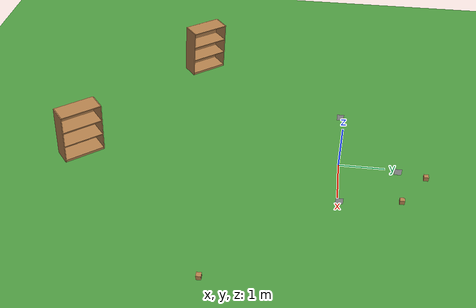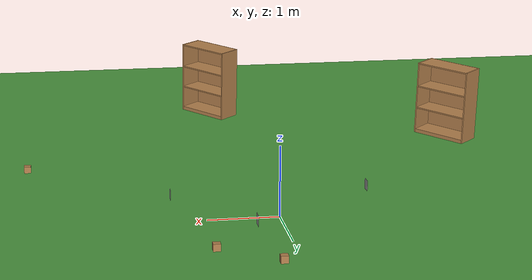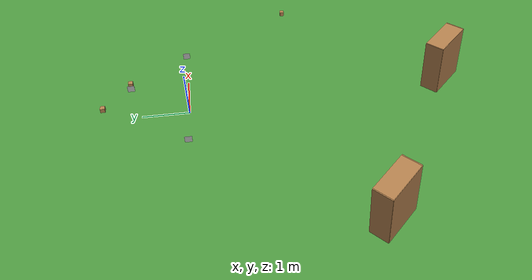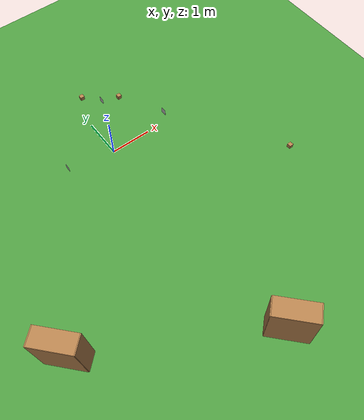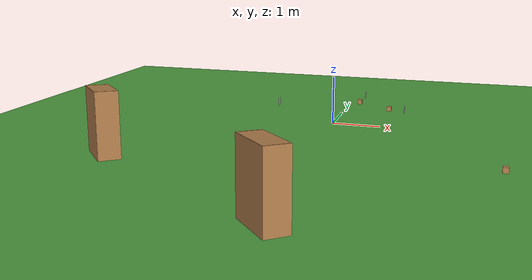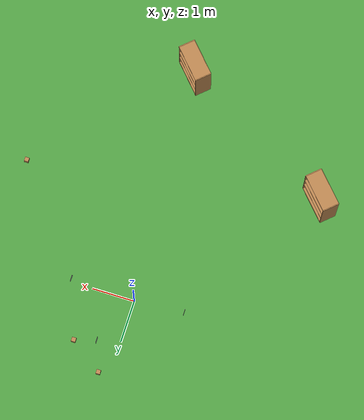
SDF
<sdf version="1.7">
 <world name="apriltag_world">
  <model name="grass_ground">
   <pose>-0.976022 -0.701641 0 0 -0 0</pose>
   <static>true</static>
   <link name="link">
    <collision name="collision">
     <geometry><plane><normal>0 0 1</normal><size>100 100</size></plane></geometry>
     <surface><friction><ode><mu>100</mu><mu2>50</mu2></ode></friction></surface>
    </collision>
    <visual name="visual">
     <cast_shadows>false</cast_shadows>
     <geometry><plane><normal>0 0 1</normal><size>100 100</size></plane></geometry>
     <material>
      <script><uri>file://media/materials/scripts/gazebo.material</uri><name>Gazebo/Grass</name></script>
     </material>
    </visual>
   </link>
  </model>
  <model name="apriltag_0">
   <static>1</static>
   <link name="link">
    <visual name="visual">
     <geometry><box><size>0.15 0.001 0.15</size></box></geometry>
     <material>
      <script>
       <uri>model://apriltag_0/materials/scripts</uri>
       <uri>model://apriltag_0/materials/textures</uri>
       <name>AprilTag/Tag0</name>
      </script>
     </material>
    </visual>
    <collision name="collision"><geometry><box><size>0.15 0.001 0.15</size></box></geometry></collision>
   </link>
   <pose>1.5 0 0.4 0 -0 1.5708</pose>
  </model>
  <model name="apriltag_1">
   <static>1</static>
   <link name="link">
    <visual name="visual">
     <geometry><box><size>0.15 0.001 0.15</size></box></geometry>
     <material>
      <script>
       <uri>model://apriltag_1/materials/scripts</uri>
       <uri>model://apriltag_1/materials/textures</uri>
       <name>AprilTag/Tag1</name>
      </script>
     </material>
    </visual>
    <collision name="collision"><geometry><box><size>0.15 0.001 0.15</size></box></geometry></collision>
   </link>
   <pose>0.5 1.2 0.4 0 -0 1.5708</pose>
  </model>
  <model name="apriltag_2">
   <static>1</static>
   <link name="link">
    <visual name="visual">
     <geometry><box><size>0.15 0.001 0.15</size></box></geometry>
     <material>
      <script>
       <uri>model://apriltag_2/materials/scripts</uri>
       <uri>model://apriltag_2/materials/textures</uri>
       <name>AprilTag/Tag2</name>
      </script>
     </material>
    </visual>
    <collision name="collision"><geometry><box><size>0.15 0.001 0.15</size></box></geometry></collision>
   </link>
   <pose>-1.2 0 0.4 0 -0 1.5708</pose>
  </model>
  <model name="bookshelf">
   <static>1</static>
   <link name="link">
    <inertial><mass>1</mass></inertial>
    <collision name="back">
     <pose>0 0.005 0.6 0 -0 0</pose>
     <geometry><box><size>0.9 0.01 1.2</size></box></geometry>
    </collision>
    <visual name="visual1">
     <pose>0 0.005 0.6 0 -0 0</pose>
     <geometry><box><size>0.9 0.01 1.2</size></box></geometry>
     <material>
      <script><uri>file://media/materials/scripts/gazebo.material</uri><name>Gazebo/Wood</name></script>
     </material>
    </visual>
    <collision name="left_side">
     <pose>0.45 -0.195 0.6 0 -0 0</pose>
     <geometry><box><size>0.02 0.4 1.2</size></box></geometry>
    </collision>
    <visual name="visual2">
     <pose>0.45 -0.195 0.6 0 -0 0</pose>
     <geometry><box><size>0.02 0.4 1.2</size></box></geometry>
     <material>
      <script><uri>file://media/materials/scripts/gazebo.material</uri><name>Gazebo/Wood</name></script>
     </material>
    </visual>
    <collision name="right_side">
     <pose>-0.45 -0.195 0.6 0 -0 0</pose>
     <geometry><box><size>0.02 0.4 1.2</size></box></geometry>
    </collision>
    <visual name="visual3">
     <pose>-0.45 -0.195 0.6 0 -0 0</pose>
     <geometry><box><size>0.02 0.4 1.2</size></box></geometry>
     <material>
      <script><uri>file://media/materials/scripts/gazebo.material</uri><name>Gazebo/Wood</name></script>
     </material>
    </visual>
    <collision name="bottom">
     <pose>0 -0.195 0.03 0 -0 0</pose>
     <geometry><box><size>0.88 0.4 0.06</size></box></geometry>
    </collision>
    <visual name="visual4">
     <pose>0 -0.195 0.03 0 -0 0</pose>
     <geometry><box><size>0.88 0.4 0.06</size></box></geometry>
     <material>
      <script><uri>file://media/materials/scripts/gazebo.material</uri><name>Gazebo/Wood</name></script>
     </material>
    </visual>
    <collision name="top">
     <pose>0 -0.195 1.19 0 -0 0</pose>
     <geometry><box><size>0.88 0.4 0.02</size></box></geometry>
    </collision>
    <visual name="visual5">
     <pose>0 -0.195 1.19 0 -0 0</pose>
     <geometry><box><size>0.88 0.4 0.02</size></box></geometry>
     <material>
      <script><uri>file://media/materials/scripts/gazebo.material</uri><name>Gazebo/Wood</name></script>
     </material>
    </visual>
    <collision name="low_shelf">
     <pose>0 -0.195 0.43 0 -0 0</pose>
     <geometry><box><size>0.88 0.4 0.02</size></box></geometry>
    </collision>
    <visual name="visual6">
     <pose>0 -0.195 0.43 0 -0 0</pose>
     <geometry><box><size>0.88 0.4 0.02</size></box></geometry>
     <material>
      <script><uri>file://media/materials/scripts/gazebo.material</uri><name>Gazebo/Wood</name></script>
     </material>
    </visual>
    <collision name="high_shelf">
     <pose>0 -0.195 0.8 0 -0 0</pose>
     <geometry><box><size>0.88 0.4 0.02</size></box></geometry>
    </collision>
    <visual name="visual7">
     <pose>0 -0.195 0.8 0 -0 0</pose>
     <geometry><box><size>0.88 0.4 0.02</size></box></geometry>
     <material>
      <script><uri>file://media/materials/scripts/gazebo.material</uri><name>Gazebo/Wood</name></script>
     </material>
    </visual>
   </link>
   <pose>-3.53817 -3.65933 0.062872 0.033085 0.055459 2.30524</pose>
  </model>
  <model name="bookshelf_clone">
   <static>1</static>
   <link name="link">
    <inertial><mass>1</mass></inertial>
    <collision name="back">
     <pose>0 0.005 0.6 0 -0 0</pose>
     <geometry><box><size>0.9 0.01 1.2</size></box></geometry>
    </collision>
    <visual name="visual1">
     <pose>0 0.005 0.6 0 -0 0</pose>
     <geometry><box><size>0.9 0.01 1.2</size></box></geometry>
     <material>
      <script><uri>file://media/materials/scripts/gazebo.material</uri><name>Gazebo/Wood</name></script>
     </material>
    </visual>
    <collision name="left_side">
     <pose>0.45 -0.195 0.6 0 -0 0</pose>
     <geometry><box><size>0.02 0.4 1.2</size></box></geometry>
    </collision>
    <visual name="visual2">
     <pose>0.45 -0.195 0.6 0 -0 0</pose>
     <geometry><box><size>0.02 0.4 1.2</size></box></geometry>
     <material>
      <script><uri>file://media/materials/scripts/gazebo.material</uri><name>Gazebo/Wood</name></script>
     </material>
    </visual>
    <collision name="right_side">
     <pose>-0.45 -0.195 0.6 0 -0 0</pose>
     <geometry><box><size>0.02 0.4 1.2</size></box></geometry>
    </collision>
    <visual name="visual3">
     <pose>-0.45 -0.195 0.6 0 -0 0</pose>
     <geometry><box><size>0.02 0.4 1.2</size></box></geometry>
     <material>
      <script><uri>file://media/materials/scripts/gazebo.material</uri><name>Gazebo/Wood</name></script>
     </material>
    </visual>
    <collision name="bottom">
     <pose>0 -0.195 0.03 0 -0 0</pose>
     <geometry><box><size>0.88 0.4 0.06</size></box></geometry>
    </collision>
    <visual name="visual4">
     <pose>0 -0.195 0.03 0 -0 0</pose>
     <geometry><box><size>0.88 0.4 0.06</size></box></geometry>
     <material>
      <script><uri>file://media/materials/scripts/gazebo.material</uri><name>Gazebo/Wood</name></script>
     </material>
    </visual>
    <collision name="top">
     <pose>0 -0.195 1.19 0 -0 0</pose>
     <geometry><box><size>0.88 0.4 0.02</size></box></geometry>
    </collision>
    <visual name="visual5">
     <pose>0 -0.195 1.19 0 -0 0</pose>
     <geometry><box><size>0.88 0.4 0.02</size></box></geometry>
     <material>
      <script><uri>file://media/materials/scripts/gazebo.material</uri><name>Gazebo/Wood</name></script>
     </material>
    </visual>
    <collision name="low_shelf">
     <pose>0 -0.195 0.43 0 -0 0</pose>
     <geometry><box><size>0.88 0.4 0.02</size></box></geometry>
    </collision>
    <visual name="visual6">
     <pose>0 -0.195 0.43 0 -0 0</pose>
     <geometry><box><size>0.88 0.4 0.02</size></box></geometry>
     <material>
      <script><uri>file://media/materials/scripts/gazebo.material</uri><name>Gazebo/Wood</name></script>
     </material>
    </visual>
    <collision name="high_shelf">
     <pose>0 -0.195 0.8 0 -0 0</pose>
     <geometry><box><size>0.88 0.4 0.02</size></box></geometry>
    </collision>
    <visual name="visual7">
     <pose>0 -0.195 0.8 0 -0 0</pose>
     <geometry><box><size>0.88 0.4 0.02</size></box></geometry>
     <material>
      <script><uri>file://media/materials/scripts/gazebo.material</uri><name>Gazebo/Wood</name></script>
     </material>
    </visual>
   </link>
   <pose>0.147034 -5.81504 0.062872 0.033085 0.055459 2.30524</pose>
  </model>
  <model name="wood_cube_10cm_clone_0">
   <link name="link">
    <pose>0 0 0.05 0 -0 0</pose>
    <inertial>
     <mass>0.5167</mass>
     <inertia>
      <ixx>0.000861167</ixx>
      <ixy>0</ixy>
      <ixz>0</ixz>
      <iyy>0.000861167</iyy>
      <iyz>0</iyz>
      <izz>0.000861167</izz>
     </inertia>
    </inertial>
    <collision name="collision">
     <geometry><box><size>0.1 0.1 0.1</size></box></geometry>
     <surface>
      <contact>
       <poissons_ratio>0.347</poissons_ratio>
       <elastic_modulus>8.8e+09</elastic_modulus>
       <ode><kp>100000</kp><kd>100</kd><max_vel>100</max_vel><min_depth>0.001</min_depth></ode>
      </contact>
      <friction>
       <torsional>
        <coefficient>1</coefficient>
        <use_patch_radius>0</use_patch_radius>
        <surface_radius>0.01</surface_radius>
       </torsional>
      </friction>
     </surface>
    </collision>
    <visual name="visual">
     <geometry><box><size>0.1 0.1 0.1</size></box></geometry>
     <material>
      <script><uri>file://media/materials/scripts/gazebo.material</uri><name>Gazebo/Wood</name></script>
     </material>
    </visual>
   </link>
   <pose>1.03444 1.29422 0.048987 0 -0 0</pose>
  </model>
  <model name="wood_cube_10cm_clone_1">
   <link name="link">
    <pose>0 0 0.05 0 -0 0</pose>
    <inertial>
     <mass>0.5167</mass>
     <inertia>
      <ixx>0.000861167</ixx>
      <ixy>0</ixy>
      <ixz>0</ixz>
      <iyy>0.000861167</iyy>
      <iyz>0</iyz>
      <izz>0.000861167</izz>
     </inertia>
    </inertial>
    <collision name="collision">
     <geometry><box><size>0.1 0.1 0.1</size></box></geometry>
     <surface>
      <contact>
       <poissons_ratio>0.347</poissons_ratio>
       <elastic_modulus>8.8e+09</elastic_modulus>
       <ode><kp>100000</kp><kd>100</kd><max_vel>100</max_vel><min_depth>0.001</min_depth></ode>
      </contact>
      <friction>
       <torsional>
        <coefficient>1</coefficient>
        <use_patch_radius>0</use_patch_radius>
        <surface_radius>0.01</surface_radius>
       </torsional>
      </friction>
     </surface>
    </collision>
    <visual name="visual">
     <geometry><box><size>0.1 0.1 0.1</size></box></geometry>
     <material>
      <script><uri>file://media/materials/scripts/gazebo.material</uri><name>Gazebo/Wood</name></script>
     </material>
    </visual>
   </link>
   <pose>0.266759 1.83946 0.048987 0 -0 0</pose>
  </model>
  <model name="wood_cube_10cm_clone_2">
   <link name="link">
    <pose>0 0 0.05 0 -0 0</pose>
    <inertial>
     <mass>0.5167</mass>
     <inertia>
      <ixx>0.000861167</ixx>
      <ixy>0</ixy>
      <ixz>0</ixz>
      <iyy>0.000861167</iyy>
      <iyz>0</iyz>
      <izz>0.000861167</izz>
     </inertia>
    </inertial>
    <collision name="collision">
     <geometry><box><size>0.1 0.1 0.1</size></box></geometry>
     <surface>
      <contact>
       <poissons_ratio>0.347</poissons_ratio>
       <elastic_modulus>8.8e+09</elastic_modulus>
       <ode><kp>100000</kp><kd>100</kd><max_vel>100</max_vel><min_depth>0.001</min_depth></ode>
      </contact>
      <friction>
       <torsional>
        <coefficient>1</coefficient>
        <use_patch_radius>0</use_patch_radius>
        <surface_radius>0.01</surface_radius>
       </torsional>
      </friction>
     </surface>
    </collision>
    <visual name="visual">
     <geometry><box><size>0.1 0.1 0.1</size></box></geometry>
     <material>
      <script><uri>file://media/materials/scripts/gazebo.material</uri><name>Gazebo/Wood</name></script>
     </material>
    </visual>
   </link>
   <pose>3.4344 -2.47999 0.048987 0 -0 0</pose>
  </model>
 </world>
</sdf>
